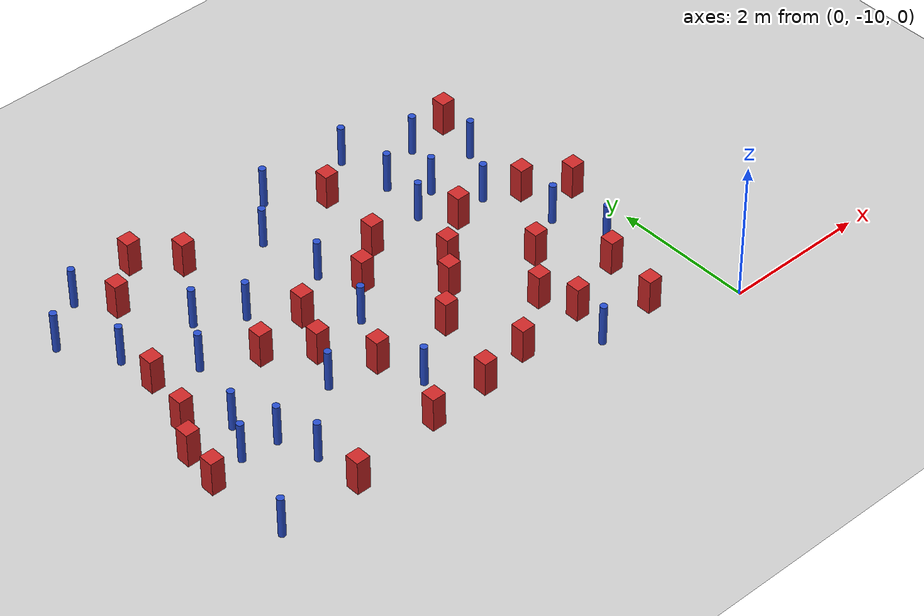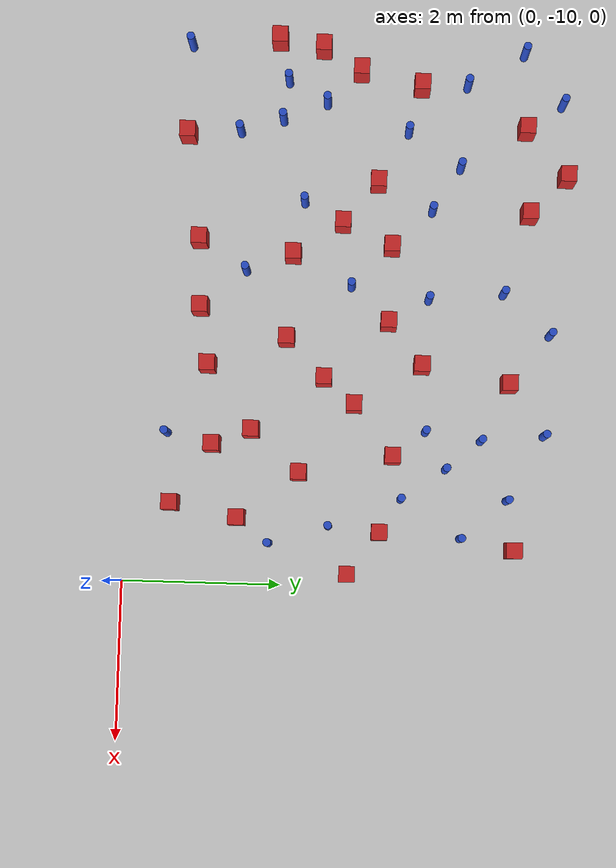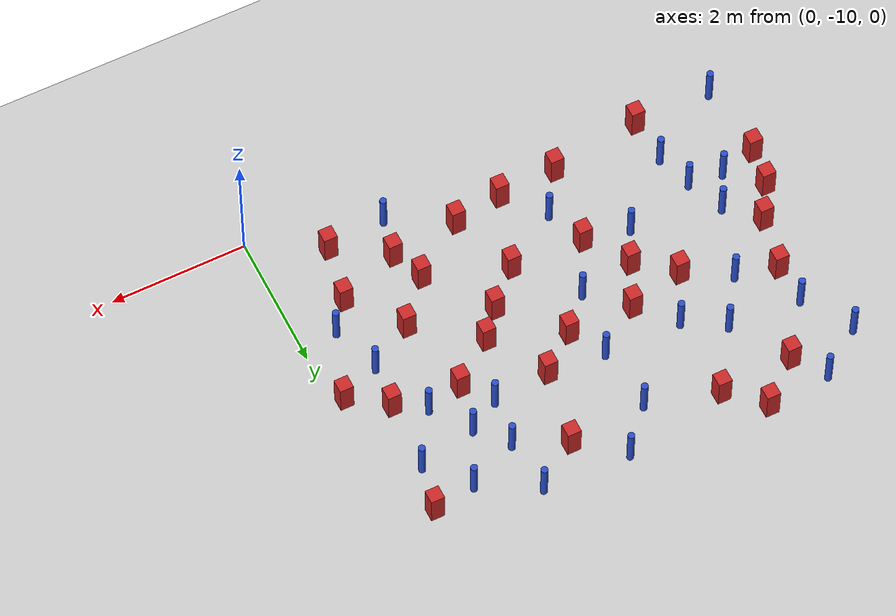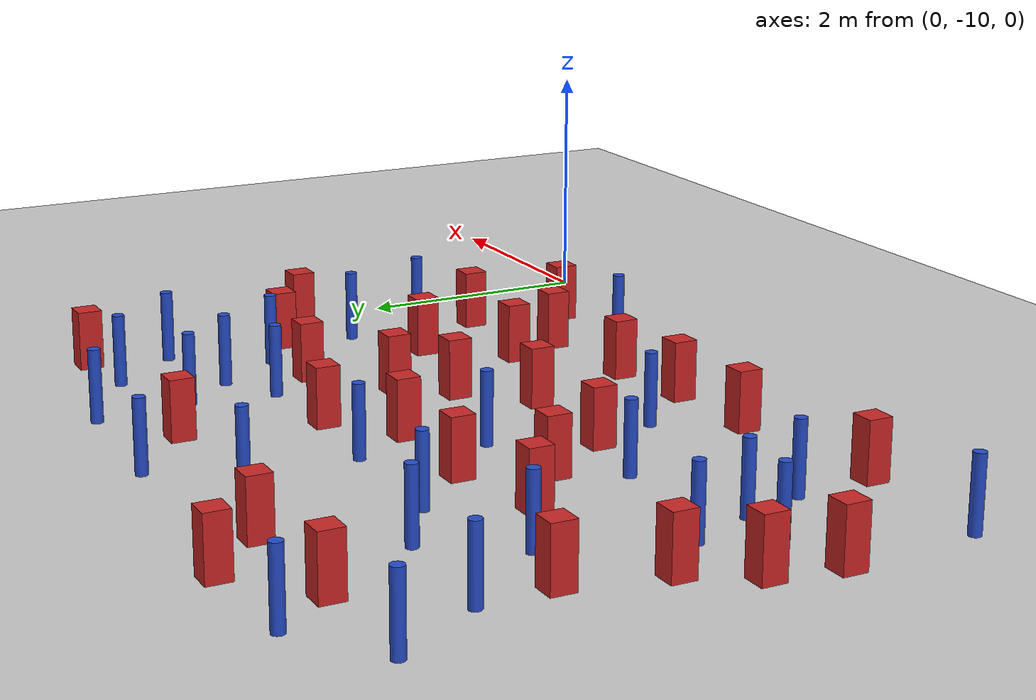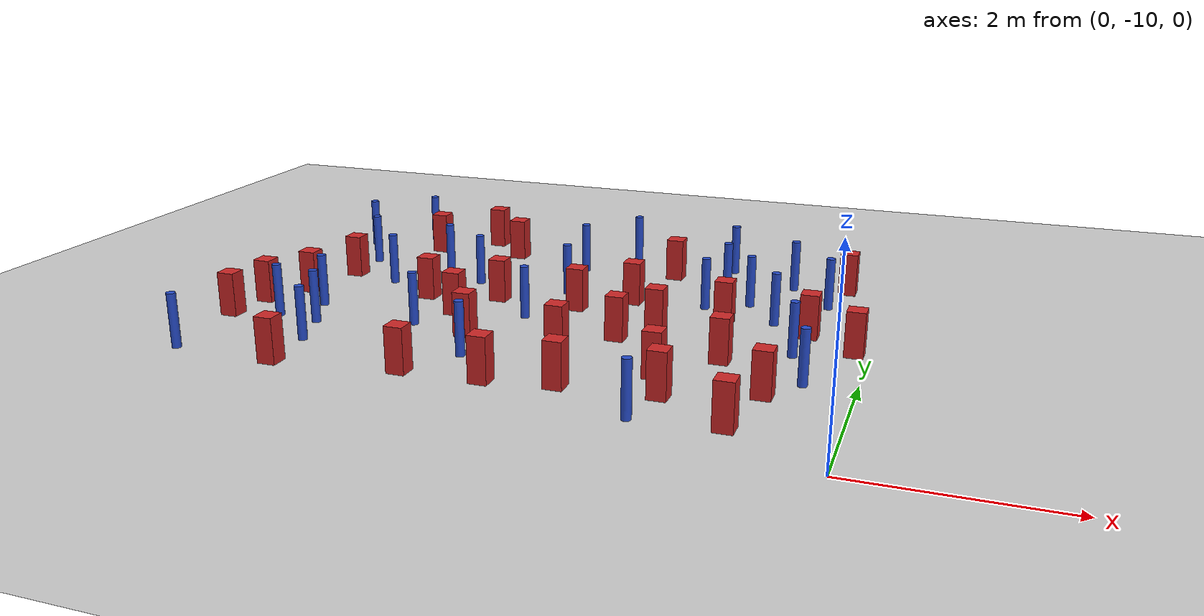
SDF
<sdf version="1.6">
 <world name="default">
  <model name="ground_plane">
   <static>1</static>
   <link name="link">
    <collision name="collision">
     <geometry><plane><normal>0 0 1</normal><size>100 100</size></plane></geometry>
     <surface><friction><ode><mu>100</mu><mu2>50</mu2></ode></friction></surface>
    </collision>
    <visual name="visual">
     <cast_shadows>0</cast_shadows>
     <geometry><plane><normal>0 0 1</normal><size>100 100</size></plane></geometry>
     <material>
      <ambient>1.0 1.0 1.0 1.0</ambient>
      <diffuse>0.8 0.8 0.8 1.0</diffuse>
      <specular>0.01 0.01 0.01 1.000000</specular>
     </material>
    </visual>
   </link>
  </model>
  <model name="square_post_obstacle10">
   <static>true</static>
   <pose>-5.13952486066 -6.89971847633 1.91545236811e-07 -7.35059704564e-06 1.12565212e-07 2.39332434364e-05</pose>
   <link name="link">
    <pose>0 0 0.25 0 -0 0</pose>
    <inertial>
     <mass>100</mass>
     <inertia>
      <ixx>0.166667</ixx>
      <ixy>0</ixy>
      <ixz>0</ixz>
      <iyy>0.166667</iyy>
      <iyz>0</iyz>
      <izz>0.166667</izz>
     </inertia>
    </inertial>
    <collision name="collision"><geometry><box><size>.2 .2 .5</size></box></geometry></collision>
    <visual name="visual">
     <geometry><box><size>.2 .2 .5</size></box></geometry>
     <material>
      <script><name>Gazebo/Red</name><uri>file://media/materials/scripts/gazebo.material</uri></script>
     </material>
    </visual>
   </link>
  </model>
  <model name="pole_obstacle8">
   <static>true</static>
   <pose>-1.87639103738 -5.52417425113 7.38925637345e-09 -8.47170692799e-08 1.24976765033e-08 -1.74513093018e-07</pose>
   <link name="link">
    <pose>0 0 0.3 0 -0 0</pose>
    <inertial>
     <mass>1</mass>
     <inertia><ixx>0.145833</ixx><ixy>0</ixy><ixz>0</ixz><iyy>0.145833</iyy><iyz>0</iyz><izz>0.125</izz></inertia>
    </inertial>
    <collision name="collision">
     <geometry><cylinder><radius>0.05</radius><length>.6</length></cylinder></geometry>
    </collision>
    <visual name="visual">
     <geometry><cylinder><radius>0.05</radius><length>.6</length></cylinder></geometry>
     <material>
      <script><name>Gazebo/Blue</name><uri>file://media/materials/scripts/gazebo.material</uri></script>
     </material>
    </visual>
   </link>
  </model>
  <model name="square_post_obstacle21">
   <static>true</static>
   <pose>-2.7512530869 -8.99102333689 1.91545236811e-07 -7.35059704564e-06 1.12565212e-07 2.39332434364e-05</pose>
   <link name="link">
    <pose>0 0 0.25 0 -0 0</pose>
    <inertial>
     <mass>100</mass>
     <inertia>
      <ixx>0.166667</ixx>
      <ixy>0</ixy>
      <ixz>0</ixz>
      <iyy>0.166667</iyy>
      <iyz>0</iyz>
      <izz>0.166667</izz>
     </inertia>
    </inertial>
    <collision name="collision"><geometry><box><size>.2 .2 .5</size></box></geometry></collision>
    <visual name="visual">
     <geometry><box><size>.2 .2 .5</size></box></geometry>
     <material>
      <script><name>Gazebo/Red</name><uri>file://media/materials/scripts/gazebo.material</uri></script>
     </material>
    </visual>
   </link>
  </model>
  <model name="pole_obstacle13">
   <static>true</static>
   <pose>-6.87187064369 -9.32866329716 7.38925637345e-09 -8.471706928e-08 1.24976765081e-08 -1.74513093015e-07</pose>
   <link name="link">
    <pose>0 0 0.3 0 -0 0</pose>
    <inertial>
     <mass>1</mass>
     <inertia><ixx>0.145833</ixx><ixy>0</ixy><ixz>0</ixz><iyy>0.145833</iyy><iyz>0</iyz><izz>0.125</izz></inertia>
    </inertial>
    <collision name="collision">
     <geometry><cylinder><radius>0.05</radius><length>.6</length></cylinder></geometry>
    </collision>
    <visual name="visual">
     <geometry><cylinder><radius>0.05</radius><length>.6</length></cylinder></geometry>
     <material>
      <script><name>Gazebo/Blue</name><uri>file://media/materials/scripts/gazebo.material</uri></script>
     </material>
    </visual>
   </link>
  </model>
  <model name="square_post_obstacle23">
   <static>true</static>
   <pose>-4.60558496701 -7.3352118702 1.91545236811e-07 -7.35059704564e-06 1.12565212e-07 2.39332434364e-05</pose>
   <link name="link">
    <pose>0 0 0.25 0 -0 0</pose>
    <inertial>
     <mass>100</mass>
     <inertia>
      <ixx>0.166667</ixx>
      <ixy>0</ixy>
      <ixz>0</ixz>
      <iyy>0.166667</iyy>
      <iyz>0</iyz>
      <izz>0.166667</izz>
     </inertia>
    </inertial>
    <collision name="collision"><geometry><box><size>.2 .2 .5</size></box></geometry></collision>
    <visual name="visual">
     <geometry><box><size>.2 .2 .5</size></box></geometry>
     <material>
      <script><name>Gazebo/Red</name><uri>file://media/materials/scripts/gazebo.material</uri></script>
     </material>
    </visual>
   </link>
  </model>
  <model name="pole_obstacle19">
   <static>true</static>
   <pose>-4.86636003995 -7.82970636336 7.38925637345e-09 -8.47170692796e-08 1.24976764786e-08 -1.74513093032e-07</pose>
   <link name="link">
    <pose>0 0 0.3 0 -0 0</pose>
    <inertial>
     <mass>1</mass>
     <inertia><ixx>0.145833</ixx><ixy>0</ixy><ixz>0</ixz><iyy>0.145833</iyy><iyz>0</iyz><izz>0.125</izz></inertia>
    </inertial>
    <collision name="collision">
     <geometry><cylinder><radius>0.05</radius><length>.6</length></cylinder></geometry>
    </collision>
    <visual name="visual">
     <geometry><cylinder><radius>0.05</radius><length>.6</length></cylinder></geometry>
     <material>
      <script><name>Gazebo/Blue</name><uri>file://media/materials/scripts/gazebo.material</uri></script>
     </material>
    </visual>
   </link>
  </model>
  <model name="pole_obstacle20">
   <static>true</static>
   <pose>-3.96666572395 -8.54690763764 7.38925637345e-09 -8.47170692799e-08 1.24976765043e-08 -1.74513093017e-07</pose>
   <link name="link">
    <pose>0 0 0.3 0 -0 0</pose>
    <inertial>
     <mass>1</mass>
     <inertia><ixx>0.145833</ixx><ixy>0</ixy><ixz>0</ixz><iyy>0.145833</iyy><iyz>0</iyz><izz>0.125</izz></inertia>
    </inertial>
    <collision name="collision">
     <geometry><cylinder><radius>0.05</radius><length>.6</length></cylinder></geometry>
    </collision>
    <visual name="visual">
     <geometry><cylinder><radius>0.05</radius><length>.6</length></cylinder></geometry>
     <material>
      <script><name>Gazebo/Blue</name><uri>file://media/materials/scripts/gazebo.material</uri></script>
     </material>
    </visual>
   </link>
  </model>
  <model name="pole_obstacle30">
   <static>true</static>
   <pose>-0.640609965322 -5.75604477994 7.38925637345e-09 -8.471706928e-08 1.24976765086e-08 -1.74513093015e-07</pose>
   <link name="link">
    <pose>0 0 0.3 0 -0 0</pose>
    <inertial>
     <mass>1</mass>
     <inertia><ixx>0.145833</ixx><ixy>0</ixy><ixz>0</ixz><iyy>0.145833</iyy><iyz>0</iyz><izz>0.125</izz></inertia>
    </inertial>
    <collision name="collision">
     <geometry><cylinder><radius>0.05</radius><length>.6</length></cylinder></geometry>
    </collision>
    <visual name="visual">
     <geometry><cylinder><radius>0.05</radius><length>.6</length></cylinder></geometry>
     <material>
      <script><name>Gazebo/Blue</name><uri>file://media/materials/scripts/gazebo.material</uri></script>
     </material>
    </visual>
   </link>
  </model>
  <model name="pole_obstacle31">
   <static>true</static>
   <pose>-6.42844407073 -5.79049608647 7.38925637345e-09 -8.47170692796e-08 1.24976764786e-08 -1.74513093032e-07</pose>
   <link name="link">
    <pose>0 0 0.3 0 -0 0</pose>
    <inertial>
     <mass>1</mass>
     <inertia><ixx>0.145833</ixx><ixy>0</ixy><ixz>0</ixz><iyy>0.145833</iyy><iyz>0</iyz><izz>0.125</izz></inertia>
    </inertial>
    <collision name="collision">
     <geometry><cylinder><radius>0.05</radius><length>.6</length></cylinder></geometry>
    </collision>
    <visual name="visual">
     <geometry><cylinder><radius>0.05</radius><length>.6</length></cylinder></geometry>
     <material>
      <script><name>Gazebo/Blue</name><uri>file://media/materials/scripts/gazebo.material</uri></script>
     </material>
    </visual>
   </link>
  </model>
  <model name="pole_obstacle48">
   <static>true</static>
   <pose>-0.520418659637 -8.16272037802 7.38925637345e-09 -8.47170692796e-08 1.24976764704e-08 -1.74513093037e-07</pose>
   <link name="link">
    <pose>0 0 0.3 0 -0 0</pose>
    <inertial>
     <mass>1</mass>
     <inertia><ixx>0.145833</ixx><ixy>0</ixy><ixz>0</ixz><iyy>0.145833</iyy><iyz>0</iyz><izz>0.125</izz></inertia>
    </inertial>
    <collision name="collision">
     <geometry><cylinder><radius>0.05</radius><length>.6</length></cylinder></geometry>
    </collision>
    <visual name="visual">
     <geometry><cylinder><radius>0.05</radius><length>.6</length></cylinder></geometry>
     <material>
      <script><name>Gazebo/Blue</name><uri>file://media/materials/scripts/gazebo.material</uri></script>
     </material>
    </visual>
   </link>
  </model>
  <model name="pole_obstacle50">
   <static>true</static>
   <pose>-5.92548192099 -8.1330993992 7.38925637345e-09 -8.471706928e-08 1.24976765081e-08 -1.74513093015e-07</pose>
   <link name="link">
    <pose>0 0 0.3 0 -0 0</pose>
    <inertial>
     <mass>1</mass>
     <inertia><ixx>0.145833</ixx><ixy>0</ixy><ixz>0</ixz><iyy>0.145833</iyy><iyz>0</iyz><izz>0.125</izz></inertia>
    </inertial>
    <collision name="collision">
     <geometry><cylinder><radius>0.05</radius><length>.6</length></cylinder></geometry>
    </collision>
    <visual name="visual">
     <geometry><cylinder><radius>0.05</radius><length>.6</length></cylinder></geometry>
     <material>
      <script><name>Gazebo/Blue</name><uri>file://media/materials/scripts/gazebo.material</uri></script>
     </material>
    </visual>
   </link>
  </model>
  <model name="square_post_obstacle53">
   <static>true</static>
   <pose>-2.29252648537 -7.13390019268 1.91545236811e-07 -7.35059704564e-06 1.12565212e-07 2.39332434364e-05</pose>
   <link name="link">
    <pose>0 0 0.25 0 -0 0</pose>
    <inertial>
     <mass>100</mass>
     <inertia>
      <ixx>0.166667</ixx>
      <ixy>0</ixy>
      <ixz>0</ixz>
      <iyy>0.166667</iyy>
      <iyz>0</iyz>
      <izz>0.166667</izz>
     </inertia>
    </inertial>
    <collision name="collision"><geometry><box><size>.2 .2 .5</size></box></geometry></collision>
    <visual name="visual">
     <geometry><box><size>.2 .2 .5</size></box></geometry>
     <material>
      <script><name>Gazebo/Red</name><uri>file://media/materials/scripts/gazebo.material</uri></script>
     </material>
    </visual>
   </link>
  </model>
  <model name="square_post_obstacle63">
   <static>true</static>
   <pose>-5.87165512603 -5.03228632529 1.91545236811e-07 -7.35059704564e-06 1.12565212e-07 2.39332434364e-05</pose>
   <link name="link">
    <pose>0 0 0.25 0 -0 0</pose>
    <inertial>
     <mass>100</mass>
     <inertia>
      <ixx>0.166667</ixx>
      <ixy>0</ixy>
      <ixz>0</ixz>
      <iyy>0.166667</iyy>
      <iyz>0</iyz>
      <izz>0.166667</izz>
     </inertia>
    </inertial>
    <collision name="collision"><geometry><box><size>.2 .2 .5</size></box></geometry></collision>
    <visual name="visual">
     <geometry><box><size>.2 .2 .5</size></box></geometry>
     <material>
      <script><name>Gazebo/Red</name><uri>file://media/materials/scripts/gazebo.material</uri></script>
     </material>
    </visual>
   </link>
  </model>
  <model name="square_post_obstacle66">
   <static>true</static>
   <pose>-0.507123574653 -5.09535236411 1.91545236811e-07 -7.35059704564e-06 1.12565212e-07 2.39332434364e-05</pose>
   <link name="link">
    <pose>0 0 0.25 0 -0 0</pose>
    <inertial>
     <mass>100</mass>
     <inertia>
      <ixx>0.166667</ixx>
      <ixy>0</ixy>
      <ixz>0</ixz>
      <iyy>0.166667</iyy>
      <iyz>0</iyz>
      <izz>0.166667</izz>
     </inertia>
    </inertial>
    <collision name="collision"><geometry><box><size>.2 .2 .5</size></box></geometry></collision>
    <visual name="visual">
     <geometry><box><size>.2 .2 .5</size></box></geometry>
     <material>
      <script><name>Gazebo/Red</name><uri>file://media/materials/scripts/gazebo.material</uri></script>
     </material>
    </visual>
   </link>
  </model>
  <model name="pole_obstacle67">
   <static>true</static>
   <pose>-3.65346776015 -6.22328937623 7.38925637345e-09 -8.47170692794e-08 1.24976764468e-08 -1.7451309304e-07</pose>
   <link name="link">
    <pose>0 0 0.3 0 -0 0</pose>
    <inertial>
     <mass>1</mass>
     <inertia><ixx>0.145833</ixx><ixy>0</ixy><ixz>0</ixz><iyy>0.145833</iyy><iyz>0</iyz><izz>0.125</izz></inertia>
    </inertial>
    <collision name="collision">
     <geometry><cylinder><radius>0.05</radius><length>.6</length></cylinder></geometry>
    </collision>
    <visual name="visual">
     <geometry><cylinder><radius>0.05</radius><length>.6</length></cylinder></geometry>
     <material>
      <script><name>Gazebo/Blue</name><uri>file://media/materials/scripts/gazebo.material</uri></script>
     </material>
    </visual>
   </link>
  </model>
  <model name="pole_obstacle69">
   <static>true</static>
   <pose>-4.79204010713 -6.20416195175 7.38925637345e-09 -8.47170692796e-08 1.24976764786e-08 -1.74513093032e-07</pose>
   <link name="link">
    <pose>0 0 0.3 0 -0 0</pose>
    <inertial>
     <mass>1</mass>
     <inertia><ixx>0.145833</ixx><ixy>0</ixy><ixz>0</ixz><iyy>0.145833</iyy><iyz>0</iyz><izz>0.125</izz></inertia>
    </inertial>
    <collision name="collision">
     <geometry><cylinder><radius>0.05</radius><length>.6</length></cylinder></geometry>
    </collision>
    <visual name="visual">
     <geometry><cylinder><radius>0.05</radius><length>.6</length></cylinder></geometry>
     <material>
      <script><name>Gazebo/Blue</name><uri>file://media/materials/scripts/gazebo.material</uri></script>
     </material>
    </visual>
   </link>
  </model>
  <model name="square_post_obstacle76">
   <static>true</static>
   <pose>-6.96265155672 -8.20502199091 1.91545236811e-07 -7.35059704564e-06 1.12565212e-07 2.39332434364e-05</pose>
   <link name="link">
    <pose>0 0 0.25 0 -0 0</pose>
    <inertial>
     <mass>100</mass>
     <inertia>
      <ixx>0.166667</ixx>
      <ixy>0</ixy>
      <ixz>0</ixz>
      <iyy>0.166667</iyy>
      <iyz>0</iyz>
      <izz>0.166667</izz>
     </inertia>
    </inertial>
    <collision name="collision"><geometry><box><size>.2 .2 .5</size></box></geometry></collision>
    <visual name="visual">
     <geometry><box><size>.2 .2 .5</size></box></geometry>
     <material>
      <script><name>Gazebo/Red</name><uri>file://media/materials/scripts/gazebo.material</uri></script>
     </material>
    </visual>
   </link>
  </model>
  <model name="pole_obstacle93">
   <static>true</static>
   <pose>-1.87948259001 -9.48408217607 7.38925637345e-09 -8.47170692798e-08 1.24976764881e-08 -1.74513093027e-07</pose>
   <link name="link">
    <pose>0 0 0.3 0 -0 0</pose>
    <inertial>
     <mass>1</mass>
     <inertia><ixx>0.145833</ixx><ixy>0</ixy><ixz>0</ixz><iyy>0.145833</iyy><iyz>0</iyz><izz>0.125</izz></inertia>
    </inertial>
    <collision name="collision">
     <geometry><cylinder><radius>0.05</radius><length>.6</length></cylinder></geometry>
    </collision>
    <visual name="visual">
     <geometry><cylinder><radius>0.05</radius><length>.6</length></cylinder></geometry>
     <material>
      <script><name>Gazebo/Blue</name><uri>file://media/materials/scripts/gazebo.material</uri></script>
     </material>
    </visual>
   </link>
  </model>
  <model name="square_post_obstacle84">
   <static>true</static>
   <pose>-1.65178411315 -6.63323031922 1.91545236811e-07 -7.35059704564e-06 1.12565212e-07 2.39332434364e-05</pose>
   <link name="link">
    <pose>0 0 0.25 0 -0 0</pose>
    <inertial>
     <mass>100</mass>
     <inertia>
      <ixx>0.166667</ixx>
      <ixy>0</ixy>
      <ixz>0</ixz>
      <iyy>0.166667</iyy>
      <iyz>0</iyz>
      <izz>0.166667</izz>
     </inertia>
    </inertial>
    <collision name="collision"><geometry><box><size>.2 .2 .5</size></box></geometry></collision>
    <visual name="visual">
     <geometry><box><size>.2 .2 .5</size></box></geometry>
     <material>
      <script><name>Gazebo/Red</name><uri>file://media/materials/scripts/gazebo.material</uri></script>
     </material>
    </visual>
   </link>
  </model>
  <model name="square_post_obstacle86">
   <static>true</static>
   <pose>-2.80793216993 -6.29262559915 1.91545236811e-07 -7.35059704564e-06 1.12565212e-07 2.39332434364e-05</pose>
   <link name="link">
    <pose>0 0 0.25 0 -0 0</pose>
    <inertial>
     <mass>100</mass>
     <inertia>
      <ixx>0.166667</ixx>
      <ixy>0</ixy>
      <ixz>0</ixz>
      <iyy>0.166667</iyy>
      <iyz>0</iyz>
      <izz>0.166667</izz>
     </inertia>
    </inertial>
    <collision name="collision"><geometry><box><size>.2 .2 .5</size></box></geometry></collision>
    <visual name="visual">
     <geometry><box><size>.2 .2 .5</size></box></geometry>
     <material>
      <script><name>Gazebo/Red</name><uri>file://media/materials/scripts/gazebo.material</uri></script>
     </material>
    </visual>
   </link>
  </model>
  <model name="pole_obstacle97">
   <static>true</static>
   <pose>-1.1169498687 -6.51305377569 7.38925637345e-09 -8.47170692799e-08 1.24976765033e-08 -1.74513093018e-07</pose>
   <link name="link">
    <pose>0 0 0.3 0 -0 0</pose>
    <inertial>
     <mass>1</mass>
     <inertia><ixx>0.145833</ixx><ixy>0</ixy><ixz>0</ixz><iyy>0.145833</iyy><iyz>0</iyz><izz>0.125</izz></inertia>
    </inertial>
    <collision name="collision">
     <geometry><cylinder><radius>0.05</radius><length>.6</length></cylinder></geometry>
    </collision>
    <visual name="visual">
     <geometry><cylinder><radius>0.05</radius><length>.6</length></cylinder></geometry>
     <material>
      <script><name>Gazebo/Blue</name><uri>file://media/materials/scripts/gazebo.material</uri></script>
     </material>
    </visual>
   </link>
  </model>
  <model name="pole_obstacle99">
   <static>true</static>
   <pose>-5.36016746258 -5.85819607551 7.38925637345e-09 -8.47170692796e-08 1.24976764786e-08 -1.74513093032e-07</pose>
   <link name="link">
    <pose>0 0 0.3 0 -0 0</pose>
    <inertial>
     <mass>1</mass>
     <inertia><ixx>0.145833</ixx><ixy>0</ixy><ixz>0</ixz><iyy>0.145833</iyy><iyz>0</iyz><izz>0.125</izz></inertia>
    </inertial>
    <collision name="collision">
     <geometry><cylinder><radius>0.05</radius><length>.6</length></cylinder></geometry>
    </collision>
    <visual name="visual">
     <geometry><cylinder><radius>0.05</radius><length>.6</length></cylinder></geometry>
     <material>
      <script><name>Gazebo/Blue</name><uri>file://media/materials/scripts/gazebo.material</uri></script>
     </material>
    </visual>
   </link>
  </model>
  <model name="square_post_obstacle92">
   <static>true</static>
   <pose>-3.11346608398 -8.00720449494 1.91545236811e-07 -7.35059704564e-06 1.12565212e-07 2.39332434364e-05</pose>
   <link name="link">
    <pose>0 0 0.25 0 -0 0</pose>
    <inertial>
     <mass>100</mass>
     <inertia>
      <ixx>0.166667</ixx>
      <ixy>0</ixy>
      <ixz>0</ixz>
      <iyy>0.166667</iyy>
      <iyz>0</iyz>
      <izz>0.166667</izz>
     </inertia>
    </inertial>
    <collision name="collision"><geometry><box><size>.2 .2 .5</size></box></geometry></collision>
    <visual name="visual">
     <geometry><box><size>.2 .2 .5</size></box></geometry>
     <material>
      <script><name>Gazebo/Red</name><uri>file://media/materials/scripts/gazebo.material</uri></script>
     </material>
    </visual>
   </link>
  </model>
  <model name="square_post_obstacle103">
   <static>true</static>
   <pose>-5.7092826459 -9.33688329334 1.91545236811e-07 -7.35059704564e-06 1.12565212e-07 2.39332434364e-05</pose>
   <link name="link">
    <pose>0 0 0.25 0 -0 0</pose>
    <inertial>
     <mass>100</mass>
     <inertia>
      <ixx>0.166667</ixx>
      <ixy>0</ixy>
      <ixz>0</ixz>
      <iyy>0.166667</iyy>
      <iyz>0</iyz>
      <izz>0.166667</izz>
     </inertia>
    </inertial>
    <collision name="collision"><geometry><box><size>.2 .2 .5</size></box></geometry></collision>
    <visual name="visual">
     <geometry><box><size>.2 .2 .5</size></box></geometry>
     <material>
      <script><name>Gazebo/Red</name><uri>file://media/materials/scripts/gazebo.material</uri></script>
     </material>
    </visual>
   </link>
  </model>
  <model name="square_post_obstacle104">
   <static>true</static>
   <pose>-6.57745564052 -7.15433630933 1.91545236811e-07 -7.35059704564e-06 1.12565212e-07 2.39332434364e-05</pose>
   <link name="link">
    <pose>0 0 0.25 0 -0 0</pose>
    <inertial>
     <mass>100</mass>
     <inertia>
      <ixx>0.166667</ixx>
      <ixy>0</ixy>
      <ixz>0</ixz>
      <iyy>0.166667</iyy>
      <iyz>0</iyz>
      <izz>0.166667</izz>
     </inertia>
    </inertial>
    <collision name="collision"><geometry><box><size>.2 .2 .5</size></box></geometry></collision>
    <visual name="visual">
     <geometry><box><size>.2 .2 .5</size></box></geometry>
     <material>
      <script><name>Gazebo/Red</name><uri>file://media/materials/scripts/gazebo.material</uri></script>
     </material>
    </visual>
   </link>
  </model>
  <model name="pole_obstacle119">
   <static>true</static>
   <pose>-0.753557937524 -7.41727583534 7.38925637345e-09 -8.471706928e-08 1.24976765086e-08 -1.74513093015e-07</pose>
   <link name="link">
    <pose>0 0 0.3 0 -0 0</pose>
    <inertial>
     <mass>1</mass>
     <inertia><ixx>0.145833</ixx><ixy>0</ixy><ixz>0</ixz><iyy>0.145833</iyy><iyz>0</iyz><izz>0.125</izz></inertia>
    </inertial>
    <collision name="collision">
     <geometry><cylinder><radius>0.05</radius><length>.6</length></cylinder></geometry>
    </collision>
    <visual name="visual">
     <geometry><cylinder><radius>0.05</radius><length>.6</length></cylinder></geometry>
     <material>
      <script><name>Gazebo/Blue</name><uri>file://media/materials/scripts/gazebo.material</uri></script>
     </material>
    </visual>
   </link>
  </model>
  <model name="square_post_obstacle111">
   <static>true</static>
   <pose>-4.77867525229 -4.97800064063 1.91545236811e-07 -7.35059704564e-06 1.12565212e-07 2.39332434364e-05</pose>
   <link name="link">
    <pose>0 0 0.25 0 -0 0</pose>
    <inertial>
     <mass>100</mass>
     <inertia>
      <ixx>0.166667</ixx>
      <ixy>0</ixy>
      <ixz>0</ixz>
      <iyy>0.166667</iyy>
      <iyz>0</iyz>
      <izz>0.166667</izz>
     </inertia>
    </inertial>
    <collision name="collision"><geometry><box><size>.2 .2 .5</size></box></geometry></collision>
    <visual name="visual">
     <geometry><box><size>.2 .2 .5</size></box></geometry>
     <material>
      <script><name>Gazebo/Red</name><uri>file://media/materials/scripts/gazebo.material</uri></script>
     </material>
    </visual>
   </link>
  </model>
  <model name="pole_obstacle129">
   <static>true</static>
   <pose>-1.97135333609 -6.22411552088 7.38925637345e-09 -8.47170692799e-08 1.2497676507e-08 -1.74513093016e-07</pose>
   <link name="link">
    <pose>0 0 0.3 0 -0 0</pose>
    <inertial>
     <mass>1</mass>
     <inertia><ixx>0.145833</ixx><ixy>0</ixy><ixz>0</ixz><iyy>0.145833</iyy><iyz>0</iyz><izz>0.125</izz></inertia>
    </inertial>
    <collision name="collision">
     <geometry><cylinder><radius>0.05</radius><length>.6</length></cylinder></geometry>
    </collision>
    <visual name="visual">
     <geometry><cylinder><radius>0.05</radius><length>.6</length></cylinder></geometry>
     <material>
      <script><name>Gazebo/Blue</name><uri>file://media/materials/scripts/gazebo.material</uri></script>
     </material>
    </visual>
   </link>
  </model>
  <model name="square_post_obstacle119">
   <static>true</static>
   <pose>-5.26790321171 -4.50678568617 1.91545236811e-07 -7.35059704564e-06 1.12565212e-07 2.39332434364e-05</pose>
   <link name="link">
    <pose>0 0 0.25 0 -0 0</pose>
    <inertial>
     <mass>100</mass>
     <inertia>
      <ixx>0.166667</ixx>
      <ixy>0</ixy>
      <ixz>0</ixz>
      <iyy>0.166667</iyy>
      <iyz>0</iyz>
      <izz>0.166667</izz>
     </inertia>
    </inertial>
    <collision name="collision"><geometry><box><size>.2 .2 .5</size></box></geometry></collision>
    <visual name="visual">
     <geometry><box><size>.2 .2 .5</size></box></geometry>
     <material>
      <script><name>Gazebo/Red</name><uri>file://media/materials/scripts/gazebo.material</uri></script>
     </material>
    </visual>
   </link>
  </model>
  <model name="pole_obstacle139">
   <static>true</static>
   <pose>-6.42999250251 -8.07547870685 7.38925637345e-09 -8.471706928e-08 1.24976765081e-08 -1.74513093015e-07</pose>
   <link name="link">
    <pose>0 0 0.3 0 -0 0</pose>
    <inertial>
     <mass>1</mass>
     <inertia><ixx>0.145833</ixx><ixy>0</ixy><ixz>0</ixz><iyy>0.145833</iyy><iyz>0</iyz><izz>0.125</izz></inertia>
    </inertial>
    <collision name="collision">
     <geometry><cylinder><radius>0.05</radius><length>.6</length></cylinder></geometry>
    </collision>
    <visual name="visual">
     <geometry><cylinder><radius>0.05</radius><length>.6</length></cylinder></geometry>
     <material>
      <script><name>Gazebo/Blue</name><uri>file://media/materials/scripts/gazebo.material</uri></script>
     </material>
    </visual>
   </link>
  </model>
  <model name="square_post_obstacle123">
   <static>true</static>
   <pose>-4.35123300278 -9.1462637451 1.91545236811e-07 -7.35059704564e-06 1.12565212e-07 2.39332434364e-05</pose>
   <link name="link">
    <pose>0 0 0.25 0 -0 0</pose>
    <inertial>
     <mass>100</mass>
     <inertia>
      <ixx>0.166667</ixx>
      <ixy>0</ixy>
      <ixz>0</ixz>
      <iyy>0.166667</iyy>
      <iyz>0</iyz>
      <izz>0.166667</izz>
     </inertia>
    </inertial>
    <collision name="collision"><geometry><box><size>.2 .2 .5</size></box></geometry></collision>
    <visual name="visual">
     <geometry><box><size>.2 .2 .5</size></box></geometry>
     <material>
      <script><name>Gazebo/Red</name><uri>file://media/materials/scripts/gazebo.material</uri></script>
     </material>
    </visual>
   </link>
  </model>
  <model name="pole_obstacle146">
   <static>true</static>
   <pose>-3.74949912184 -5.27789308659 7.38925637345e-09 -8.47170692794e-08 1.24976764468e-08 -1.7451309304e-07</pose>
   <link name="link">
    <pose>0 0 0.3 0 -0 0</pose>
    <inertial>
     <mass>1</mass>
     <inertia><ixx>0.145833</ixx><ixy>0</ixy><ixz>0</ixz><iyy>0.145833</iyy><iyz>0</iyz><izz>0.125</izz></inertia>
    </inertial>
    <collision name="collision">
     <geometry><cylinder><radius>0.05</radius><length>.6</length></cylinder></geometry>
    </collision>
    <visual name="visual">
     <geometry><cylinder><radius>0.05</radius><length>.6</length></cylinder></geometry>
     <material>
      <script><name>Gazebo/Blue</name><uri>file://media/materials/scripts/gazebo.material</uri></script>
     </material>
    </visual>
   </link>
  </model>
  <model name="square_post_obstacle138">
   <static>true</static>
   <pose>-1.41567288323 -7.80470076123 1.91545236811e-07 -7.35059704564e-06 1.12565212e-07 2.39332434364e-05</pose>
   <link name="link">
    <pose>0 0 0.25 0 -0 0</pose>
    <inertial>
     <mass>100</mass>
     <inertia>
      <ixx>0.166667</ixx>
      <ixy>0</ixy>
      <ixz>0</ixz>
      <iyy>0.166667</iyy>
      <iyz>0</iyz>
      <izz>0.166667</izz>
     </inertia>
    </inertial>
    <collision name="collision"><geometry><box><size>.2 .2 .5</size></box></geometry></collision>
    <visual name="visual">
     <geometry><box><size>.2 .2 .5</size></box></geometry>
     <material>
      <script><name>Gazebo/Red</name><uri>file://media/materials/scripts/gazebo.material</uri></script>
     </material>
    </visual>
   </link>
  </model>
  <model name="square_post_obstacle141">
   <static>true</static>
   <pose>-3.3499106459 -6.72623296167 1.91545236811e-07 -7.35059704564e-06 1.12565212e-07 2.39332434364e-05</pose>
   <link name="link">
    <pose>0 0 0.25 0 -0 0</pose>
    <inertial>
     <mass>100</mass>
     <inertia>
      <ixx>0.166667</ixx>
      <ixy>0</ixy>
      <ixz>0</ixz>
      <iyy>0.166667</iyy>
      <iyz>0</iyz>
      <izz>0.166667</izz>
     </inertia>
    </inertial>
    <collision name="collision"><geometry><box><size>.2 .2 .5</size></box></geometry></collision>
    <visual name="visual">
     <geometry><box><size>.2 .2 .5</size></box></geometry>
     <material>
      <script><name>Gazebo/Red</name><uri>file://media/materials/scripts/gazebo.material</uri></script>
     </material>
    </visual>
   </link>
  </model>
  <model name="square_post_obstacle142">
   <static>true</static>
   <pose>-0.994535052985 -9.40036060526 1.91545236811e-07 -7.35059704564e-06 1.12565212e-07 2.39332434364e-05</pose>
   <link name="link">
    <pose>0 0 0.25 0 -0 0</pose>
    <inertial>
     <mass>100</mass>
     <inertia>
      <ixx>0.166667</ixx>
      <ixy>0</ixy>
      <ixz>0</ixz>
      <iyy>0.166667</iyy>
      <iyz>0</iyz>
      <izz>0.166667</izz>
     </inertia>
    </inertial>
    <collision name="collision"><geometry><box><size>.2 .2 .5</size></box></geometry></collision>
    <visual name="visual">
     <geometry><box><size>.2 .2 .5</size></box></geometry>
     <material>
      <script><name>Gazebo/Red</name><uri>file://media/materials/scripts/gazebo.material</uri></script>
     </material>
    </visual>
   </link>
  </model>
  <model name="square_post_obstacle144">
   <static>true</static>
   <pose>-0.158456428336 -7.1664505277 1.91545236811e-07 -7.35059704564e-06 1.12565212e-07 2.39332434364e-05</pose>
   <link name="link">
    <pose>0 0 0.25 0 -0 0</pose>
    <inertial>
     <mass>100</mass>
     <inertia>
      <ixx>0.166667</ixx>
      <ixy>0</ixy>
      <ixz>0</ixz>
      <iyy>0.166667</iyy>
      <iyz>0</iyz>
      <izz>0.166667</izz>
     </inertia>
    </inertial>
    <collision name="collision"><geometry><box><size>.2 .2 .5</size></box></geometry></collision>
    <visual name="visual">
     <geometry><box><size>.2 .2 .5</size></box></geometry>
     <material>
      <script><name>Gazebo/Red</name><uri>file://media/materials/scripts/gazebo.material</uri></script>
     </material>
    </visual>
   </link>
  </model>
  <model name="pole_obstacle162">
   <static>true</static>
   <pose>-6.15752032212 -7.57849903664 7.38925637345e-09 -8.47170692796e-08 1.24976764786e-08 -1.74513093032e-07</pose>
   <link name="link">
    <pose>0 0 0.3 0 -0 0</pose>
    <inertial>
     <mass>1</mass>
     <inertia><ixx>0.145833</ixx><ixy>0</ixy><ixz>0</ixz><iyy>0.145833</iyy><iyz>0</iyz><izz>0.125</izz></inertia>
    </inertial>
    <collision name="collision">
     <geometry><cylinder><radius>0.05</radius><length>.6</length></cylinder></geometry>
    </collision>
    <visual name="visual">
     <geometry><cylinder><radius>0.05</radius><length>.6</length></cylinder></geometry>
     <material>
      <script><name>Gazebo/Blue</name><uri>file://media/materials/scripts/gazebo.material</uri></script>
     </material>
    </visual>
   </link>
  </model>
  <model name="square_post_obstacle159">
   <static>true</static>
   <pose>-1.74448392679 -8.90378455853 1.91545236811e-07 -7.35059704564e-06 1.12565212e-07 2.39332434364e-05</pose>
   <link name="link">
    <pose>0 0 0.25 0 -0 0</pose>
    <inertial>
     <mass>100</mass>
     <inertia>
      <ixx>0.166667</ixx>
      <ixy>0</ixy>
      <ixz>0</ixz>
      <iyy>0.166667</iyy>
      <iyz>0</iyz>
      <izz>0.166667</izz>
     </inertia>
    </inertial>
    <collision name="collision"><geometry><box><size>.2 .2 .5</size></box></geometry></collision>
    <visual name="visual">
     <geometry><box><size>.2 .2 .5</size></box></geometry>
     <material>
      <script><name>Gazebo/Red</name><uri>file://media/materials/scripts/gazebo.material</uri></script>
     </material>
    </visual>
   </link>
  </model>
  <model name="pole_obstacle173">
   <static>true</static>
   <pose>-3.79927400691 -7.20753230383 7.38925637345e-09 -8.47170692798e-08 1.24976765033e-08 -1.74513093019e-07</pose>
   <link name="link">
    <pose>0 0 0.3 0 -0 0</pose>
    <inertial>
     <mass>1</mass>
     <inertia><ixx>0.145833</ixx><ixy>0</ixy><ixz>0</ixz><iyy>0.145833</iyy><iyz>0</iyz><izz>0.125</izz></inertia>
    </inertial>
    <collision name="collision">
     <geometry><cylinder><radius>0.05</radius><length>.6</length></cylinder></geometry>
    </collision>
    <visual name="visual">
     <geometry><cylinder><radius>0.05</radius><length>.6</length></cylinder></geometry>
     <material>
      <script><name>Gazebo/Blue</name><uri>file://media/materials/scripts/gazebo.material</uri></script>
     </material>
    </visual>
   </link>
  </model>
  <model name="square_post_obstacle166">
   <static>true</static>
   <pose>-2.61821901127 -7.52193127638 1.91545236811e-07 -7.35059704564e-06 1.12565212e-07 2.39332434364e-05</pose>
   <link name="link">
    <pose>0 0 0.25 0 -0 0</pose>
    <inertial>
     <mass>100</mass>
     <inertia>
      <ixx>0.166667</ixx>
      <ixy>0</ixy>
      <ixz>0</ixz>
      <iyy>0.166667</iyy>
      <iyz>0</iyz>
      <izz>0.166667</izz>
     </inertia>
    </inertial>
    <collision name="collision"><geometry><box><size>.2 .2 .5</size></box></geometry></collision>
    <visual name="visual">
     <geometry><box><size>.2 .2 .5</size></box></geometry>
     <material>
      <script><name>Gazebo/Red</name><uri>file://media/materials/scripts/gazebo.material</uri></script>
     </material>
    </visual>
   </link>
  </model>
  <model name="square_post_obstacle174">
   <static>true</static>
   <pose>-6.39969964057 -6.37700795201 1.91545236811e-07 -7.35059704564e-06 1.12565212e-07 2.39332434364e-05</pose>
   <link name="link">
    <pose>0 0 0.25 0 -0 0</pose>
    <inertial>
     <mass>100</mass>
     <inertia>
      <ixx>0.166667</ixx>
      <ixy>0</ixy>
      <ixz>0</ixz>
      <iyy>0.166667</iyy>
      <iyz>0</iyz>
      <izz>0.166667</izz>
     </inertia>
    </inertial>
    <collision name="collision"><geometry><box><size>.2 .2 .5</size></box></geometry></collision>
    <visual name="visual">
     <geometry><box><size>.2 .2 .5</size></box></geometry>
     <material>
      <script><name>Gazebo/Red</name><uri>file://media/materials/scripts/gazebo.material</uri></script>
     </material>
    </visual>
   </link>
  </model>
  <model name="square_post_obstacle178">
   <static>true</static>
   <pose>-4.18649235406 -7.95555474052 1.91545236811e-07 -7.35059704564e-06 1.12565212e-07 2.39332434364e-05</pose>
   <link name="link">
    <pose>0 0 0.25 0 -0 0</pose>
    <inertial>
     <mass>100</mass>
     <inertia>
      <ixx>0.166667</ixx>
      <ixy>0</ixy>
      <ixz>0</ixz>
      <iyy>0.166667</iyy>
      <iyz>0</iyz>
      <izz>0.166667</izz>
     </inertia>
    </inertial>
    <collision name="collision"><geometry><box><size>.2 .2 .5</size></box></geometry></collision>
    <visual name="visual">
     <geometry><box><size>.2 .2 .5</size></box></geometry>
     <material>
      <script><name>Gazebo/Red</name><uri>file://media/materials/scripts/gazebo.material</uri></script>
     </material>
    </visual>
   </link>
  </model>
  <model name="square_post_obstacle186">
   <static>true</static>
   <pose>-4.3163699004 -6.70720003596 1.91545236811e-07 -7.35059704564e-06 1.12565212e-07 2.39332434364e-05</pose>
   <link name="link">
    <pose>0 0 0.25 0 -0 0</pose>
    <inertial>
     <mass>100</mass>
     <inertia>
      <ixx>0.166667</ixx>
      <ixy>0</ixy>
      <ixz>0</ixz>
      <iyy>0.166667</iyy>
      <iyz>0</iyz>
      <izz>0.166667</izz>
     </inertia>
    </inertial>
    <collision name="collision"><geometry><box><size>.2 .2 .5</size></box></geometry></collision>
    <visual name="visual">
     <geometry><box><size>.2 .2 .5</size></box></geometry>
     <material>
      <script><name>Gazebo/Red</name><uri>file://media/materials/scripts/gazebo.material</uri></script>
     </material>
    </visual>
   </link>
  </model>
  <model name="square_post_obstacle188">
   <static>true</static>
   <pose>-2.60011308362 -5.18870242911 1.91545236811e-07 -7.35059704564e-06 1.12565212e-07 2.39332434364e-05</pose>
   <link name="link">
    <pose>0 0 0.25 0 -0 0</pose>
    <inertial>
     <mass>100</mass>
     <inertia>
      <ixx>0.166667</ixx>
      <ixy>0</ixy>
      <ixz>0</ixz>
      <iyy>0.166667</iyy>
      <iyz>0</iyz>
      <izz>0.166667</izz>
     </inertia>
    </inertial>
    <collision name="collision"><geometry><box><size>.2 .2 .5</size></box></geometry></collision>
    <visual name="visual">
     <geometry><box><size>.2 .2 .5</size></box></geometry>
     <material>
      <script><name>Gazebo/Red</name><uri>file://media/materials/scripts/gazebo.material</uri></script>
     </material>
    </visual>
   </link>
  </model>
  <model name="square_post_obstacle189">
   <static>true</static>
   <pose>-3.48145998218 -9.10802010159 1.91545236811e-07 -7.35059704564e-06 1.12565212e-07 2.39332434364e-05</pose>
   <link name="link">
    <pose>0 0 0.25 0 -0 0</pose>
    <inertial>
     <mass>100</mass>
     <inertia>
      <ixx>0.166667</ixx>
      <ixy>0</ixy>
      <ixz>0</ixz>
      <iyy>0.166667</iyy>
      <iyz>0</iyz>
      <izz>0.166667</izz>
     </inertia>
    </inertial>
    <collision name="collision"><geometry><box><size>.2 .2 .5</size></box></geometry></collision>
    <visual name="visual">
     <geometry><box><size>.2 .2 .5</size></box></geometry>
     <material>
      <script><name>Gazebo/Red</name><uri>file://media/materials/scripts/gazebo.material</uri></script>
     </material>
    </visual>
   </link>
  </model>
  <model name="square_post_obstacle190">
   <static>true</static>
   <pose>-1.93769664088 -8.41662529256 1.91545236811e-07 -7.35059704564e-06 1.12565212e-07 2.39332434364e-05</pose>
   <link name="link">
    <pose>0 0 0.25 0 -0 0</pose>
    <inertial>
     <mass>100</mass>
     <inertia>
      <ixx>0.166667</ixx>
      <ixy>0</ixy>
      <ixz>0</ixz>
      <iyy>0.166667</iyy>
      <iyz>0</iyz>
      <izz>0.166667</izz>
     </inertia>
    </inertial>
    <collision name="collision"><geometry><box><size>.2 .2 .5</size></box></geometry></collision>
    <visual name="visual">
     <geometry><box><size>.2 .2 .5</size></box></geometry>
     <material>
      <script><name>Gazebo/Red</name><uri>file://media/materials/scripts/gazebo.material</uri></script>
     </material>
    </visual>
   </link>
  </model>
  <model name="square_post_obstacle202">
   <static>true</static>
   <pose>-6.8695093923 -7.64309665781 1.91545236811e-07 -7.35059704564e-06 1.12565212e-07 2.39332434364e-05</pose>
   <link name="link">
    <pose>0 0 0.25 0 -0 0</pose>
    <inertial>
     <mass>100</mass>
     <inertia>
      <ixx>0.166667</ixx>
      <ixy>0</ixy>
      <ixz>0</ixz>
      <iyy>0.166667</iyy>
      <iyz>0</iyz>
      <izz>0.166667</izz>
     </inertia>
    </inertial>
    <collision name="collision"><geometry><box><size>.2 .2 .5</size></box></geometry></collision>
    <visual name="visual">
     <geometry><box><size>.2 .2 .5</size></box></geometry>
     <material>
      <script><name>Gazebo/Red</name><uri>file://media/materials/scripts/gazebo.material</uri></script>
     </material>
    </visual>
   </link>
  </model>
  <model name="pole_obstacle192">
   <static>true</static>
   <pose>-6.86232446247 -5.06925425287 7.38925637345e-09 -8.47170692796e-08 1.24976764786e-08 -1.74513093032e-07</pose>
   <link name="link">
    <pose>0 0 0.3 0 -0 0</pose>
    <inertial>
     <mass>1</mass>
     <inertia><ixx>0.145833</ixx><ixy>0</ixy><ixz>0</ixz><iyy>0.145833</iyy><iyz>0</iyz><izz>0.125</izz></inertia>
    </inertial>
    <collision name="collision">
     <geometry><cylinder><radius>0.05</radius><length>.6</length></cylinder></geometry>
    </collision>
    <visual name="visual">
     <geometry><cylinder><radius>0.05</radius><length>.6</length></cylinder></geometry>
     <material>
      <script><name>Gazebo/Blue</name><uri>file://media/materials/scripts/gazebo.material</uri></script>
     </material>
    </visual>
   </link>
  </model>
  <model name="pole_obstacle200">
   <static>true</static>
   <pose>-3.23764439356 -4.68050048928 7.38925637345e-09 -8.47170692794e-08 1.24976764468e-08 -1.7451309304e-07</pose>
   <link name="link">
    <pose>0 0 0.3 0 -0 0</pose>
    <inertial>
     <mass>1</mass>
     <inertia><ixx>0.145833</ixx><ixy>0</ixy><ixz>0</ixz><iyy>0.145833</iyy><iyz>0</iyz><izz>0.125</izz></inertia>
    </inertial>
    <collision name="collision">
     <geometry><cylinder><radius>0.05</radius><length>.6</length></cylinder></geometry>
    </collision>
    <visual name="visual">
     <geometry><cylinder><radius>0.05</radius><length>.6</length></cylinder></geometry>
     <material>
      <script><name>Gazebo/Blue</name><uri>file://media/materials/scripts/gazebo.material</uri></script>
     </material>
    </visual>
   </link>
  </model>
  <model name="pole_obstacle206">
   <static>true</static>
   <pose>-5.80292990744 -6.52974649504 7.38925637345e-09 -8.47170692796e-08 1.24976764786e-08 -1.74513093032e-07</pose>
   <link name="link">
    <pose>0 0 0.3 0 -0 0</pose>
    <inertial>
     <mass>1</mass>
     <inertia><ixx>0.145833</ixx><ixy>0</ixy><ixz>0</ixz><iyy>0.145833</iyy><iyz>0</iyz><izz>0.125</izz></inertia>
    </inertial>
    <collision name="collision">
     <geometry><cylinder><radius>0.05</radius><length>.6</length></cylinder></geometry>
    </collision>
    <visual name="visual">
     <geometry><cylinder><radius>0.05</radius><length>.6</length></cylinder></geometry>
     <material>
      <script><name>Gazebo/Blue</name><uri>file://media/materials/scripts/gazebo.material</uri></script>
     </material>
    </visual>
   </link>
  </model>
  <model name="pole_obstacle209">
   <static>true</static>
   <pose>-5.75844813982 -8.67281601065 7.38925637345e-09 -8.471706928e-08 1.24976765081e-08 -1.74513093015e-07</pose>
   <link name="link">
    <pose>0 0 0.3 0 -0 0</pose>
    <inertial>
     <mass>1</mass>
     <inertia><ixx>0.145833</ixx><ixy>0</ixy><ixz>0</ixz><iyy>0.145833</iyy><iyz>0</iyz><izz>0.125</izz></inertia>
    </inertial>
    <collision name="collision">
     <geometry><cylinder><radius>0.05</radius><length>.6</length></cylinder></geometry>
    </collision>
    <visual name="visual">
     <geometry><cylinder><radius>0.05</radius><length>.6</length></cylinder></geometry>
     <material>
      <script><name>Gazebo/Blue</name><uri>file://media/materials/scripts/gazebo.material</uri></script>
     </material>
    </visual>
   </link>
  </model>
  <model name="pole_obstacle215">
   <static>true</static>
   <pose>-1.50600715173 -5.95887727074 7.38925637345e-09 -8.47170692799e-08 1.24976765033e-08 -1.74513093018e-07</pose>
   <link name="link">
    <pose>0 0 0.3 0 -0 0</pose>
    <inertial>
     <mass>1</mass>
     <inertia><ixx>0.145833</ixx><ixy>0</ixy><ixz>0</ixz><iyy>0.145833</iyy><iyz>0</iyz><izz>0.125</izz></inertia>
    </inertial>
    <collision name="collision">
     <geometry><cylinder><radius>0.05</radius><length>.6</length></cylinder></geometry>
    </collision>
    <visual name="visual">
     <geometry><cylinder><radius>0.05</radius><length>.6</length></cylinder></geometry>
     <material>
      <script><name>Gazebo/Blue</name><uri>file://media/materials/scripts/gazebo.material</uri></script>
     </material>
    </visual>
   </link>
  </model>
  <model name="pole_obstacle222">
   <static>true</static>
   <pose>-1.13401535541 -5.17971801395 7.38925637345e-09 -8.47170692799e-08 1.24976765033e-08 -1.74513093018e-07</pose>
   <link name="link">
    <pose>0 0 0.3 0 -0 0</pose>
    <inertial>
     <mass>1</mass>
     <inertia><ixx>0.145833</ixx><ixy>0</ixy><ixz>0</ixz><iyy>0.145833</iyy><iyz>0</iyz><izz>0.125</izz></inertia>
    </inertial>
    <collision name="collision">
     <geometry><cylinder><radius>0.05</radius><length>.6</length></cylinder></geometry>
    </collision>
    <visual name="visual">
     <geometry><cylinder><radius>0.05</radius><length>.6</length></cylinder></geometry>
     <material>
      <script><name>Gazebo/Blue</name><uri>file://media/materials/scripts/gazebo.material</uri></script>
     </material>
    </visual>
   </link>
  </model>
  <model name="pole_obstacle227">
   <static>true</static>
   <pose>-6.20875912749 -4.57411425625 7.38925637345e-09 -8.47170692796e-08 1.24976764786e-08 -1.74513093032e-07</pose>
   <link name="link">
    <pose>0 0 0.3 0 -0 0</pose>
    <inertial>
     <mass>1</mass>
     <inertia><ixx>0.145833</ixx><ixy>0</ixy><ixz>0</ixz><iyy>0.145833</iyy><iyz>0</iyz><izz>0.125</izz></inertia>
    </inertial>
    <collision name="collision">
     <geometry><cylinder><radius>0.05</radius><length>.6</length></cylinder></geometry>
    </collision>
    <visual name="visual">
     <geometry><cylinder><radius>0.05</radius><length>.6</length></cylinder></geometry>
     <material>
      <script><name>Gazebo/Blue</name><uri>file://media/materials/scripts/gazebo.material</uri></script>
     </material>
    </visual>
   </link>
  </model>
  <model name="pole_obstacle231">
   <static>true</static>
   <pose>-1.95970973276 -4.73017238177 7.38925637345e-09 -8.47170692799e-08 1.2497676507e-08 -1.74513093016e-07</pose>
   <link name="link">
    <pose>0 0 0.3 0 -0 0</pose>
    <inertial>
     <mass>1</mass>
     <inertia><ixx>0.145833</ixx><ixy>0</ixy><ixz>0</ixz><iyy>0.145833</iyy><iyz>0</iyz><izz>0.125</izz></inertia>
    </inertial>
    <collision name="collision">
     <geometry><cylinder><radius>0.05</radius><length>.6</length></cylinder></geometry>
    </collision>
    <visual name="visual">
     <geometry><cylinder><radius>0.05</radius><length>.6</length></cylinder></geometry>
     <material>
      <script><name>Gazebo/Blue</name><uri>file://media/materials/scripts/gazebo.material</uri></script>
     </material>
    </visual>
   </link>
  </model>
  <model name="square_post_obstacle208">
   <static>true</static>
   <pose>-0.827771035195 -8.56313001192 1.91545236811e-07 -7.35059704564e-06 1.12565212e-07 2.39332434364e-05</pose>
   <link name="link">
    <pose>0 0 0.25 0 -0 0</pose>
    <inertial>
     <mass>100</mass>
     <inertia>
      <ixx>0.166667</ixx>
      <ixy>0</ixy>
      <ixz>0</ixz>
      <iyy>0.166667</iyy>
      <iyz>0</iyz>
      <izz>0.166667</izz>
     </inertia>
    </inertial>
    <collision name="collision"><geometry><box><size>.2 .2 .5</size></box></geometry></collision>
    <visual name="visual">
     <geometry><box><size>.2 .2 .5</size></box></geometry>
     <material>
      <script><name>Gazebo/Red</name><uri>file://media/materials/scripts/gazebo.material</uri></script>
     </material>
    </visual>
   </link>
  </model>
  <model name="square_post_obstacle210">
   <static>true</static>
   <pose>-0.689777035195 -6.77588001192 1.91545236811e-07 -7.35059704564e-06 1.12565212e-07 2.39332434364e-05</pose>
   <link name="link">
    <pose>0 0 0.25 0 -0 0</pose>
    <inertial>
     <mass>100</mass>
     <inertia>
      <ixx>0.166667</ixx>
      <ixy>0</ixy>
      <ixz>0</ixz>
      <iyy>0.166667</iyy>
      <iyz>0</iyz>
      <izz>0.166667</izz>
     </inertia>
    </inertial>
    <collision name="collision"><geometry><box><size>.2 .2 .5</size></box></geometry></collision>
    <visual name="visual">
     <geometry><box><size>.2 .2 .5</size></box></geometry>
     <material>
      <script><name>Gazebo/Red</name><uri>file://media/materials/scripts/gazebo.material</uri></script>
     </material>
    </visual>
   </link>
  </model>
 </world>
</sdf>
